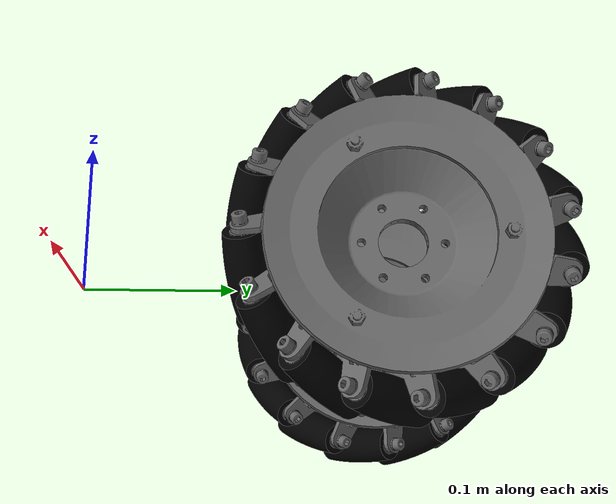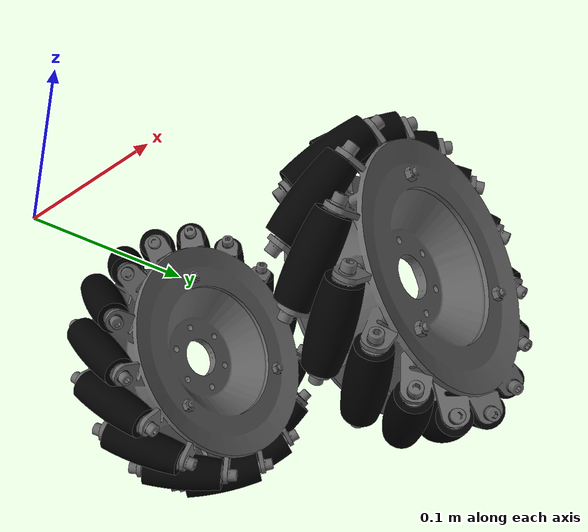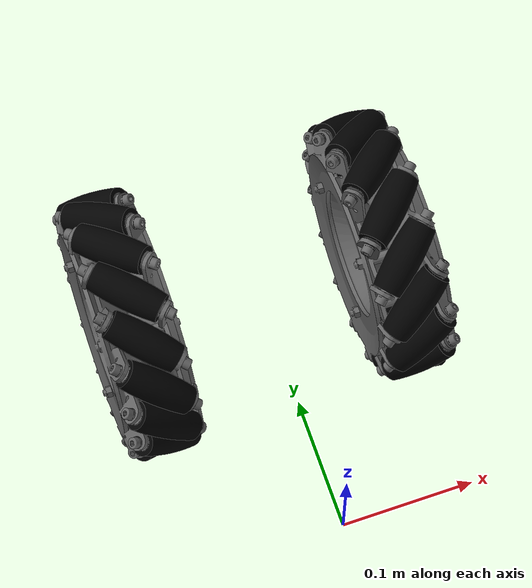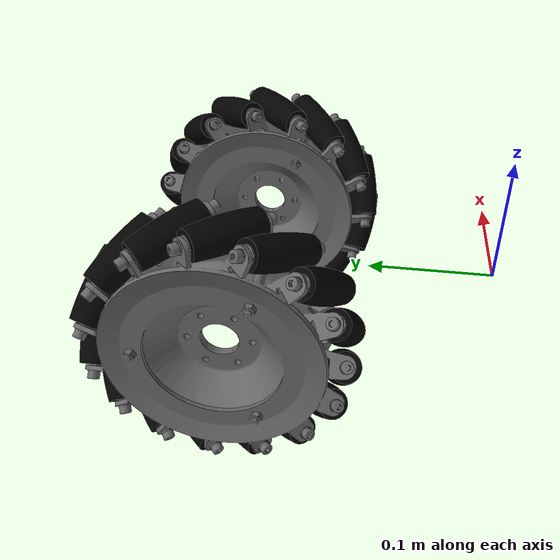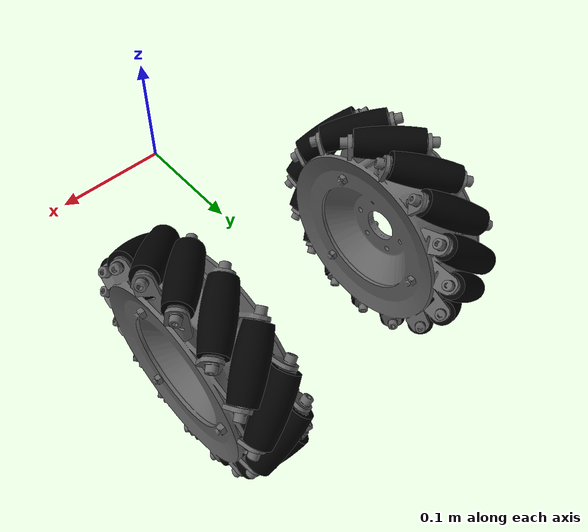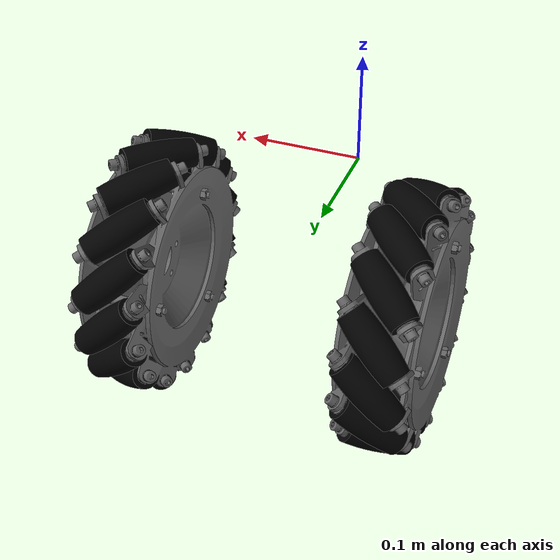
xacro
<?xml version="1.0" ?>
<robot name="mecanum_wheel_robot" xmlns:xacro="http://ros.org/wiki/xacro">

  <xacro:include filename="$(find fuji_mecanum)/urdf/mecanum_wheel_macro.xacro" />

  <xacro:mecanum_wheel name="front_right" side="1" interface="hardware_interface/EffortJointInterface" />
  <xacro:mecanum_wheel name="front_left" side="-1" interface="hardware_interface/EffortJointInterface" />

  <link name="map">
    <origin xyz="0 0 0" rpy="0 0 0" />
  </link>

  <joint name="virtual_map_right" type="fixed">
    <origin xyz="0.1 0.2 0" />
    <parent link="map" />
    <child link="front_right_wheel_link" />
  </joint>

  <joint name="virtual_map_left" type="fixed">
    <origin xyz="-0.1 0.2 0" />
    <parent link="map" />
    <child link="front_left_wheel_link" />
  </joint>

</robot>

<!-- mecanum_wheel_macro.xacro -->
<robot name="mecanum_wheel" xmlns:xacro="http://ros.org/wiki/xacro">

  <xacro:include filename="$(find fuji_mecanum)/urdf/wheel.xacro" />
  <xacro:include filename="$(find fuji_mecanum)/urdf/rollers.xacro"  />

  <xacro:macro name="mecanum_wheel" params="name side interface">

    <xacro:wheel_link name="${name}" side="${side}" />
    <xacro:rollers_link name="${name}" side="${side}" />

    <transmission name="${name}_trans">
      <type>transmission_interface/SimpleTransmission</type>
      <joint name="${name}_joint">
        <hardwareInterface>${interface}</hardwareInterface>
      </joint>
      <actuator name="${name}_motor">
        <hardwareInterface>${interface}</hardwareInterface>
        <mechanismReduction>1</mechanismReduction>
      </actuator>
    </transmission>

  </xacro:macro>

</robot>

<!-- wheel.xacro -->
<robot name="wheel" xmlns:xacro="http://www.ros.org/wiki/xacro">

  <xacro:macro name="wheel_link" params="name side">
    <link name="${name}_wheel_link">
      <visual>
        <origin xyz="0 0 0" rpy="0 0 0" />
        <geometry>
          <mesh filename="package://fuji_mecanum/mesh/visual/wheel.dae" scale="${side} 1 1" />
        </geometry>
      </visual>
      <collision>
        <geometry>
          <mesh filename="package://fuji_mecanum/mesh/collision/wheel.stl" scale="${side} 1 1" />
        </geometry>
      </collision>
      <inertial>
        <origin xyz="0 0 0" />
        <mass value="2.0" />
        <inertia ixx="0.042025" ixy="0.0" ixz="0.0"
                iyy="0.024279" iyz="0.0"
                izz="0.024279" />
      </inertial>
    </link>

    <gazebo reference="${name}_wheel_link">
      <mu1 value="0.6"/>
      <mu2 value="0.6"/>
      <kp value="10000000.0" />
      <kd value="1.0" />
      <fdir1 value="0 1 0"/>
    </gazebo>

  </xacro:macro>

</robot>

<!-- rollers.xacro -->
<robot name="wheel" xmlns:xacro="http://www.ros.org/wiki/xacro">

  <xacro:macro name="roller_origin" params="th side" >

    <xacro:if value="${side==1}">
      <origin xyz="0 ${0.0895*cos(th)} ${0.0895*sin(th)}" rpy="${atan(-tan(th)*sqrt(2.0))} ${asin(cos(th)/sqrt(2.0))} ${atan(sin(th))}"/>
    </xacro:if>

    <xacro:if value="${side==-1}">
      <origin xyz="0 ${0.0895*cos(th)} ${0.0895*sin(th)}" rpy="${atan(-tan(th)*sqrt(2.0))} ${asin(-cos(th)/sqrt(2.0))} ${atan(-sin(th))}"/>
    </xacro:if>

  </xacro:macro>

  <xacro:macro name="roller_loop" params="name side num loop" >

    <xacro:if value="${loop}">

      <link name="${name}_roller${loop}_link">
        <visual>
          <origin xyz="0 0 0" rpy="0 0 0" />
          <geometry>
            <mesh filename="package://fuji_mecanum/mesh/visual/roller.dae" scale="1 1 1" />
          </geometry>
        </visual>
        <collision>
          <geometry>
            <mesh filename="package://fuji_mecanum/mesh/collision/roller.stl" scale="1 1 1" />
          </geometry>
        </collision>
        <inertial>
          <origin xyz="0 0 0" />
          <mass value="0.3" />
          <inertia ixx="0.00024000" ixy="0.0" ixz="0.0"
                  iyy="0.00076000" iyz="0.0"
                  izz="0.00076000" />
        </inertial>
      </link>

      <joint name="${name}_roller${loop}_joint" type="continuous">
        <xacro:roller_origin th="${radians(360/num*(loop-1))}" side="${side}"/>
        <parent link="${name}_wheel_link" />
        <child link="${name}_roller${loop}_link" />
        <dynamics damping="0.01" friction="0.0001" />
      </joint>

      <gazebo reference="${name}_roller${loop}_link">
        <mu1 value="0.6"/>
        <mu2 value="0.6"/>
        <kp value="10000000.0" />
        <kd value="1.0" />
        <fdir1 value="0 1 0"/>
      </gazebo>

      <xacro:roller_loop name="${name}" side="${side}" num="${num}" loop="${loop - 1}" />

    </xacro:if>

  </xacro:macro>

  <xacro:macro name="rollers_link" params="name side">
    <xacro:roller_loop name="${name}" side="${side}" num="15" loop="15" />
  </xacro:macro>

</robot>
